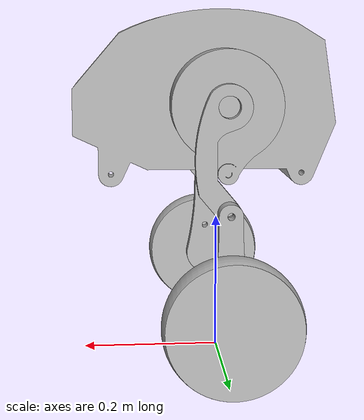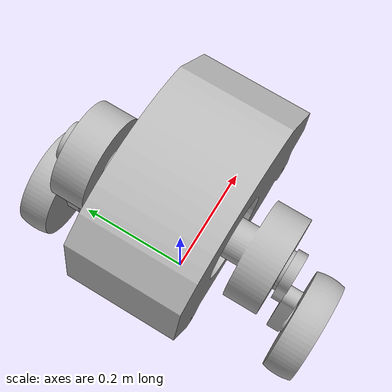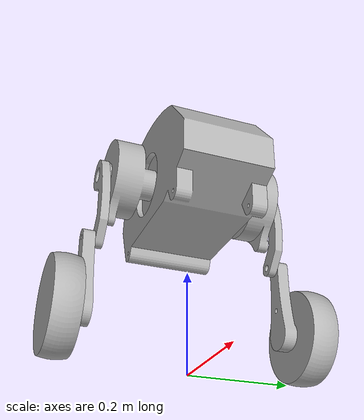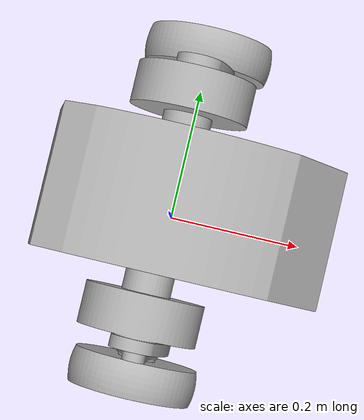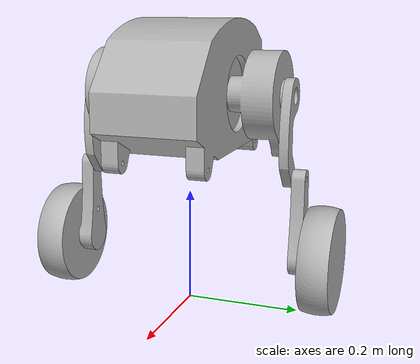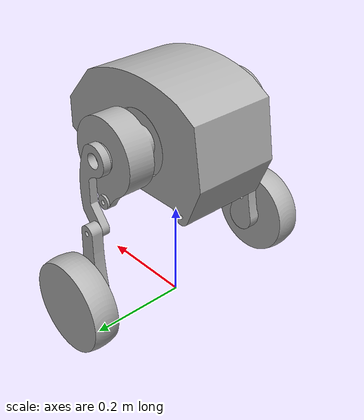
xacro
<?xml version="1.0" ?>
<robot name="diablo_simulation" xmlns:xacro="http://www.ros.org/wiki/xacro">

<xacro:include filename="/home/ubuntu/Github/Knowledge-Universe/Robotics/Roadmap-for-robot-science/rofunc/simulator/assets/urdf/curi_mini/urdf/materials.xacro" />
<xacro:include filename="/home/ubuntu/Github/Knowledge-Universe/Robotics/Roadmap-for-robot-science/rofunc/simulator/assets/urdf/curi_mini/urdf/diablo_simulation.trans" />
<xacro:include filename="/home/ubuntu/Github/Knowledge-Universe/Robotics/Roadmap-for-robot-science/rofunc/simulator/assets/urdf/curi_mini/urdf/diablo_simulation.gazebo" />
<link name="base_link">
  <inertial>
    <origin xyz="0.017543382143852662 0.00010346167746144669 0.38740254039099875" rpy="0 0 0"/>
    <mass value="89.72018430112014"/>
    <inertia ixx="0.553912" iyy="1.227224" izz="1.101448" ixy="-0.0" iyz="-0.0" ixz="0.005005"/>
  </inertial>
  <visual>
    <origin xyz="0 0 0" rpy="0 0 0"/>
    <geometry>
      <mesh filename="/home/ubuntu/Github/Knowledge-Universe/Robotics/Roadmap-for-robot-science/rofunc/simulator/assets/urdf/curi_mini/meshes/base_link.stl" scale="0.001 0.001 0.001"/>
    </geometry>
    <material name="silver"/>
  </visual>
  <collision>
    <origin xyz="0 0 0" rpy="0 0 0"/>
    <geometry>
      <mesh filename="/home/ubuntu/Github/Knowledge-Universe/Robotics/Roadmap-for-robot-science/rofunc/simulator/assets/urdf/curi_mini/meshes/base_link.stl" scale="0.001 0.001 0.001"/>
    </geometry>
  </collision>
</link>

<link name="motor_right_link_1">
  <inertial>
    <origin xyz="3.497073235617207e-07 -0.06735037400671914 -0.0012035359325800465" rpy="0 0 0"/>
    <mass value="10.862390811322886"/>
    <inertia ixx="0.027399" iyy="0.027359" izz="0.026313" ixy="-0.0" iyz="-0.000518" ixz="0.0"/>
  </inertial>
  <visual>
    <origin xyz="-0.00036 0.053347 -0.379" rpy="0 0 0"/>
    <geometry>
      <mesh filename="/home/ubuntu/Github/Knowledge-Universe/Robotics/Roadmap-for-robot-science/rofunc/simulator/assets/urdf/curi_mini/meshes/motor_right_link_1.stl" scale="0.001 0.001 0.001"/>
    </geometry>
    <material name="silver"/>
  </visual>
  <collision>
    <origin xyz="-0.00036 0.053347 -0.379" rpy="0 0 0"/>
    <geometry>
      <mesh filename="/home/ubuntu/Github/Knowledge-Universe/Robotics/Roadmap-for-robot-science/rofunc/simulator/assets/urdf/curi_mini/meshes/motor_right_link_1.stl" scale="0.001 0.001 0.001"/>
    </geometry>
  </collision>
</link>

<link name="motor_left_link_1">
  <inertial>
    <origin xyz="4.148993296440801e-07 0.06735128629132996 -0.0012035359325800465" rpy="0 0 0"/>
    <mass value="10.862390811322886"/>
    <inertia ixx="0.027399" iyy="0.027359" izz="0.026313" ixy="0.0" iyz="0.000518" ixz="0.0"/>
  </inertial>
  <visual>
    <origin xyz="-0.00036 -0.053553 -0.379" rpy="0 0 0"/>
    <geometry>
      <mesh filename="/home/ubuntu/Github/Knowledge-Universe/Robotics/Roadmap-for-robot-science/rofunc/simulator/assets/urdf/curi_mini/meshes/motor_left_link_1.stl" scale="0.001 0.001 0.001"/>
    </geometry>
    <material name="silver"/>
  </visual>
  <collision>
    <origin xyz="-0.00036 -0.053553 -0.379" rpy="0 0 0"/>
    <geometry>
      <mesh filename="/home/ubuntu/Github/Knowledge-Universe/Robotics/Roadmap-for-robot-science/rofunc/simulator/assets/urdf/curi_mini/meshes/motor_left_link_1.stl" scale="0.001 0.001 0.001"/>
    </geometry>
  </collision>
</link>

<link name="leg_left_link_1">
  <inertial>
    <origin xyz="0.014639618926214636 0.008000749919275602 -0.05662661365304966" rpy="0 0 0"/>
    <mass value="0.8157102862557681"/>
    <inertia ixx="0.002301" iyy="0.002556" izz="0.00029" ixy="0.0" iyz="-0.0" ixz="0.000189"/>
  </inertial>
  <visual>
    <origin xyz="-0.00036 -0.171653 -0.379" rpy="0 0 0"/>
    <geometry>
      <mesh filename="/home/ubuntu/Github/Knowledge-Universe/Robotics/Roadmap-for-robot-science/rofunc/simulator/assets/urdf/curi_mini/meshes/leg_left_link_1.stl" scale="0.001 0.001 0.001"/>
    </geometry>
    <material name="silver"/>
  </visual>
  <collision>
    <origin xyz="-0.00036 -0.171653 -0.379" rpy="0 0 0"/>
    <geometry>
      <mesh filename="/home/ubuntu/Github/Knowledge-Universe/Robotics/Roadmap-for-robot-science/rofunc/simulator/assets/urdf/curi_mini/meshes/leg_left_link_1.stl" scale="0.001 0.001 0.001"/>
    </geometry>
  </collision>
</link>

<link name="leg2_left_link_1">
  <inertial>
    <origin xyz="2.0745030798655474e-06 0.012347872885931949 -0.0923637086931004" rpy="0 0 0"/>
    <mass value="1.431011292925293"/>
    <inertia ixx="0.003787" iyy="0.003963" izz="0.000327" ixy="-0.0" iyz="5.8e-05" ixz="-0.0"/>
  </inertial>
  <visual>
    <origin xyz="-0.00036 -0.187653 -0.239" rpy="0 0 0"/>
    <geometry>
      <mesh filename="/home/ubuntu/Github/Knowledge-Universe/Robotics/Roadmap-for-robot-science/rofunc/simulator/assets/urdf/curi_mini/meshes/leg2_left_link_1.stl" scale="0.001 0.001 0.001"/>
    </geometry>
    <material name="silver"/>
  </visual>
  <collision>
    <origin xyz="-0.00036 -0.187653 -0.239" rpy="0 0 0"/>
    <geometry>
      <mesh filename="/home/ubuntu/Github/Knowledge-Universe/Robotics/Roadmap-for-robot-science/rofunc/simulator/assets/urdf/curi_mini/meshes/leg2_left_link_1.stl" scale="0.001 0.001 0.001"/>
    </geometry>
  </collision>
</link>

<link name="wheel_right_link_1">
  <inertial>
    <origin xyz="3.4736125019505654e-07 0.026000451876437153 -9.328030758926076e-08" rpy="0 0 0"/>
    <mass value="10.92207848434664"/>
    <inertia ixx="0.025678" iyy="0.046537" izz="0.025678" ixy="-0.0" iyz="0.0" ixz="0.0"/>
  </inertial>
  <visual>
    <origin xyz="-0.00036 -0.215353 -0.099" rpy="0 0 0"/>
    <geometry>
      <mesh filename="/home/ubuntu/Github/Knowledge-Universe/Robotics/Roadmap-for-robot-science/rofunc/simulator/assets/urdf/curi_mini/meshes/wheel_right_link_1.stl" scale="0.001 0.001 0.001"/>
    </geometry>
    <material name="silver"/>
  </visual>
  <collision>
    <origin xyz="-0.00036 -0.215353 -0.099" rpy="0 0 0"/>
    <geometry>
      <mesh filename="/home/ubuntu/Github/Knowledge-Universe/Robotics/Roadmap-for-robot-science/rofunc/simulator/assets/urdf/curi_mini/meshes/wheel_right_link_1.stl" scale="0.001 0.001 0.001"/>
    </geometry>
  </collision>
</link>

<link name="leg_right_link_1">
  <inertial>
    <origin xyz="0.014639616641252011 -0.007999847806308108 -0.0566266115993988" rpy="0 0 0"/>
    <mass value="0.8157102710156714"/>
    <inertia ixx="0.002301" iyy="0.002556" izz="0.00029" ixy="-0.0" iyz="0.0" ixz="0.000189"/>
  </inertial>
  <visual>
    <origin xyz="-0.00036 0.171447 -0.379" rpy="0 0 0"/>
    <geometry>
      <mesh filename="/home/ubuntu/Github/Knowledge-Universe/Robotics/Roadmap-for-robot-science/rofunc/simulator/assets/urdf/curi_mini/meshes/leg_right_link_1.stl" scale="0.001 0.001 0.001"/>
    </geometry>
    <material name="silver"/>
  </visual>
  <collision>
    <origin xyz="-0.00036 0.171447 -0.379" rpy="0 0 0"/>
    <geometry>
      <mesh filename="/home/ubuntu/Github/Knowledge-Universe/Robotics/Roadmap-for-robot-science/rofunc/simulator/assets/urdf/curi_mini/meshes/leg_right_link_1.stl" scale="0.001 0.001 0.001"/>
    </geometry>
  </collision>
</link>

<link name="leg2_right_link_1">
  <inertial>
    <origin xyz="2.166854021847008e-06 -0.012347127307788974 -0.09236370869313185" rpy="0 0 0"/>
    <mass value="1.4310112929252925"/>
    <inertia ixx="0.003787" iyy="0.003963" izz="0.000327" ixy="0.0" iyz="-5.8e-05" ixz="-0.0"/>
  </inertial>
  <visual>
    <origin xyz="-0.00036 0.187447 -0.239" rpy="0 0 0"/>
    <geometry>
      <mesh filename="/home/ubuntu/Github/Knowledge-Universe/Robotics/Roadmap-for-robot-science/rofunc/simulator/assets/urdf/curi_mini/meshes/leg2_right_link_1.stl" scale="0.001 0.001 0.001"/>
    </geometry>
    <material name="silver"/>
  </visual>
  <collision>
    <origin xyz="-0.00036 0.187447 -0.239" rpy="0 0 0"/>
    <geometry>
      <mesh filename="/home/ubuntu/Github/Knowledge-Universe/Robotics/Roadmap-for-robot-science/rofunc/simulator/assets/urdf/curi_mini/meshes/leg2_right_link_1.stl" scale="0.001 0.001 0.001"/>
    </geometry>
  </collision>
</link>

<link name="wheel_left_link_1">
  <inertial>
    <origin xyz="3.4736125110096166e-07 -0.025999550959093704 -9.328040287415185e-08" rpy="0 0 0"/>
    <mass value="10.922078484346637"/>
    <inertia ixx="0.025678" iyy="0.046537" izz="0.025678" ixy="0.0" iyz="0.0" ixz="0.0"/>
  </inertial>
  <visual>
    <origin xyz="-0.00036 0.215147 -0.099" rpy="0 0 0"/>
    <geometry>
      <mesh filename="/home/ubuntu/Github/Knowledge-Universe/Robotics/Roadmap-for-robot-science/rofunc/simulator/assets/urdf/curi_mini/meshes/wheel_left_link_1.stl" scale="0.001 0.001 0.001"/>
    </geometry>
    <material name="silver"/>
  </visual>
  <collision>
    <origin xyz="-0.00036 0.215147 -0.099" rpy="0 0 0"/>
    <geometry>
      <mesh filename="/home/ubuntu/Github/Knowledge-Universe/Robotics/Roadmap-for-robot-science/rofunc/simulator/assets/urdf/curi_mini/meshes/wheel_left_link_1.stl" scale="0.001 0.001 0.001"/>
    </geometry>
  </collision>
</link>

<joint name="Rev1" type="continuous">
  <origin xyz="0.00036 -0.053347 0.379" rpy="0 0 0"/>
  <parent link="base_link"/>
  <child link="motor_right_link_1"/>
  <axis xyz="0.0 -1.0 0.0"/>
</joint>

<joint name="Rev2" type="continuous">
  <origin xyz="0.00036 0.053553 0.379" rpy="0 0 0"/>
  <parent link="base_link"/>
  <child link="motor_left_link_1"/>
  <axis xyz="0.0 1.0 0.0"/>
</joint>

<joint name="Rev3" type="continuous">
  <origin xyz="0.0 0.1181 0.0" rpy="0 0 0"/>
  <parent link="motor_left_link_1"/>
  <child link="leg_left_link_1"/>
  <axis xyz="0.0 1.0 0.0"/>
</joint>

<joint name="Rev4" type="continuous">
  <origin xyz="0.0 0.016 -0.14" rpy="0 0 0"/>
  <parent link="leg_left_link_1"/>
  <child link="leg2_left_link_1"/>
  <axis xyz="0.0 1.0 -0.0"/>
</joint>

<joint name="Rev5" type="continuous">
  <origin xyz="0.0 0.0277 -0.14" rpy="0 0 0"/>
  <parent link="leg2_left_link_1"/>
  <child link="wheel_right_link_1"/>
  <axis xyz="0.0 1.0 0.0"/>
</joint>

<joint name="Rev6" type="continuous">
  <origin xyz="0.0 -0.1181 0.0" rpy="0 0 0"/>
  <parent link="motor_right_link_1"/>
  <child link="leg_right_link_1"/>
  <axis xyz="0.0 -1.0 0.0"/>
</joint>

<joint name="Rev7" type="continuous">
  <origin xyz="0.0 -0.016 -0.14" rpy="0 0 0"/>
  <parent link="leg_right_link_1"/>
  <child link="leg2_right_link_1"/>
  <axis xyz="0.0 -1.0 -0.0"/>
</joint>

<joint name="Rev8" type="continuous">
  <origin xyz="0.0 -0.0277 -0.14" rpy="0 0 0"/>
  <parent link="leg2_right_link_1"/>
  <child link="wheel_left_link_1"/>
  <axis xyz="0.0 -1.0 -0.0"/>
</joint>

</robot>

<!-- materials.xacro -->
<robot name="diablo_simulation" xmlns:xacro="http://www.ros.org/wiki/xacro" >

<material name="silver">
  <color rgba="0.700 0.700 0.700 1.000"/>
</material>

</robot>

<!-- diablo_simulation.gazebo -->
<robot name="diablo_simulation" xmlns:xacro="http://www.ros.org/wiki/xacro" >

<xacro:property name="body_color" value="Gazebo/Silver" />

<gazebo>
  <plugin name="control" filename="libgazebo_ros_control.so"/>
</gazebo>
<gazebo reference="base_link">
  <material>${body_color}</material>
  <mu1>0.2</mu1>
  <mu2>0.2</mu2>
  <self_collide>true</self_collide>
  <gravity>true</gravity>
</gazebo>

<gazebo reference="motor_right_link_1">
  <material>${body_color}</material>
  <mu1>0.2</mu1>
  <mu2>0.2</mu2>
  <self_collide>true</self_collide>
</gazebo>

<gazebo reference="motor_left_link_1">
  <material>${body_color}</material>
  <mu1>0.2</mu1>
  <mu2>0.2</mu2>
  <self_collide>true</self_collide>
</gazebo>

<gazebo reference="leg_left_link_1">
  <material>${body_color}</material>
  <mu1>0.2</mu1>
  <mu2>0.2</mu2>
  <self_collide>true</self_collide>
</gazebo>

<gazebo reference="leg2_left_link_1">
  <material>${body_color}</material>
  <mu1>0.2</mu1>
  <mu2>0.2</mu2>
  <self_collide>true</self_collide>
</gazebo>

<gazebo reference="wheel_right_link_1">
  <material>${body_color}</material>
  <mu1>0.2</mu1>
  <mu2>0.2</mu2>
  <self_collide>true</self_collide>
</gazebo>

<gazebo reference="leg_right_link_1">
  <material>${body_color}</material>
  <mu1>0.2</mu1>
  <mu2>0.2</mu2>
  <self_collide>true</self_collide>
</gazebo>

<gazebo reference="leg2_right_link_1">
  <material>${body_color}</material>
  <mu1>0.2</mu1>
  <mu2>0.2</mu2>
  <self_collide>true</self_collide>
</gazebo>

<gazebo reference="wheel_left_link_1">
  <material>${body_color}</material>
  <mu1>0.2</mu1>
  <mu2>0.2</mu2>
  <self_collide>true</self_collide>
</gazebo>

</robot>
